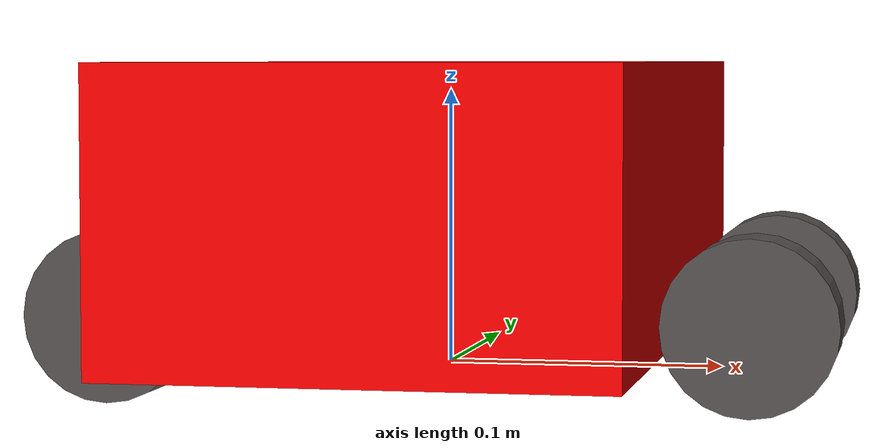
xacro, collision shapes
<?xml version="1.0"?>

<robot name="coche" xmlns:xacro="http://ros.org/wiki/xacro">

    <material name="red">
        <color rgba="1.0 0.0 0.0 1.0"/>
    </material>

    <material name="black">
        <color rgba="0.0 0.0 0.0 1.0"/>
    </material>

    <material name="gray">
        <color rgba="0.33 0.309 0.30588 1.0"/>
    </material>

    <xacro:macro name="inercia_inicial" params="mass">
        <inertial>
            <mass value="${mass}" />
            <inertia ixx="1e-3" ixy="0.0" ixz="0.0" iyy="1e-3" iyz="0.0" izz="1e-3" />
        </inertial>
    </xacro:macro>

    <link name="base_footprint"/>

    <link name="base">
        <visual>
            <geometry>
                <mesh filename="package://car_controller/meshes/chasis.stl" scale="0.0016 0.0016 0.0016"/>
            </geometry>
            <origin xyz="0.0 0.0 0.0" rpy="0.0 0.0 ${pi/2}"/>
            <material name="red"/>
        </visual>

        <collision>
            <geometry>
                <box size="0.17 0.33 0.10"/>
            </geometry>
        </collision>

        <xacro:inercia_inicial mass="1.0"/>

    </link>

    <joint name="base2base" type="fixed">
        <parent link="base_footprint"/>
        <child link="base"/>
        <origin xyz="0.0 0.0 0.06" rpy="0.0 0.0 0.0"/>
    </joint>

    <xacro:macro name="rueda" params="nombre dx dy">
        <link name="rueda_${nombre}">
            <visual>
                <geometry>
                    <mesh filename="package://car_controller/meshes/rueda.stl" scale="0.001 0.001 0.001"/>
                </geometry>
                <origin xyz="0.0 0.0 0.0" rpy="0.0 0.0 0.0"/>
                <material name="gray"/>
            </visual>

            <collision>
                <geometry>
                    <cylinder radius="0.03" length="0.03"/>
                </geometry>
            </collision>

            <xacro:inercia_inicial mass="0.1"></xacro:inercia_inicial>
        </link>

        <joint name="rueda_${nombre}_joint" type="continuous">
            <parent link="base"/>
            <child link="rueda_${nombre}"/>
            <origin xyz="${dx} ${dy} -0.038" rpy="${pi/2} 0.0 0.0"/>
            <axis xyz="0.0 0.0 -1.0"/>
        </joint>

    </xacro:macro>

    <xacro:rueda nombre="trasera_izquierda" dx="0.116" dy="0.065"/>
    <xacro:rueda nombre="trasera_derecha" dx="0.116" dy="-0.065"/>
    <xacro:rueda nombre="delantera_izquierda" dx="-0.106" dy="0.065" />
    <xacro:rueda nombre="delantera_derecha" dx="-0.106" dy="-0.065" />

    <xacro:include filename="$(find car_controller)/urdf/car.ros2_control.xacro"/>
    <xacro:include filename="$(find car_controller)/urdf/car.gazebo.xacro"/>

</robot>
